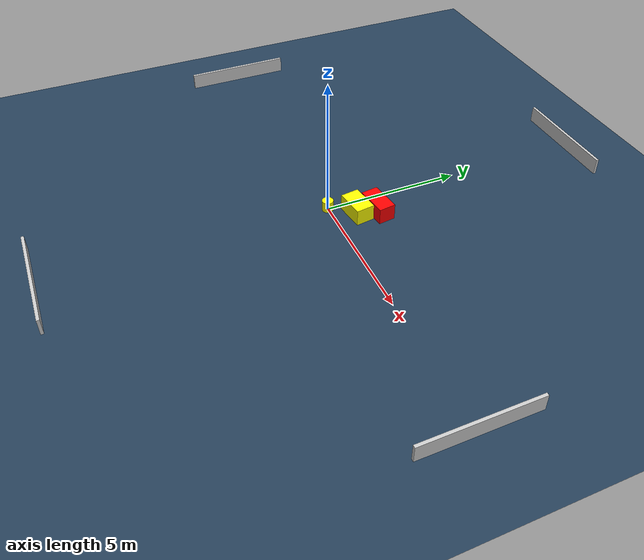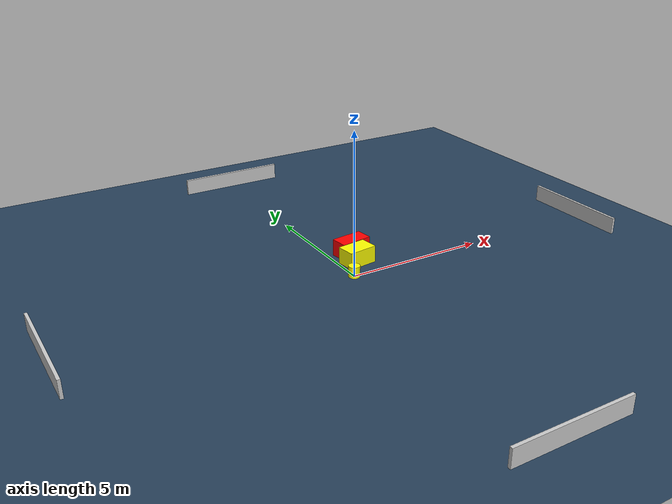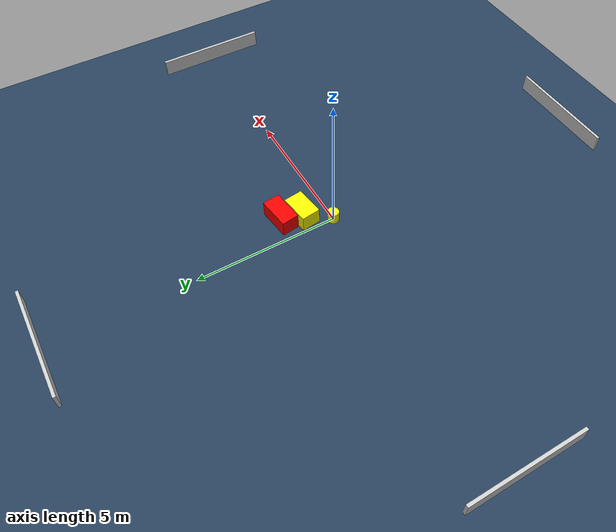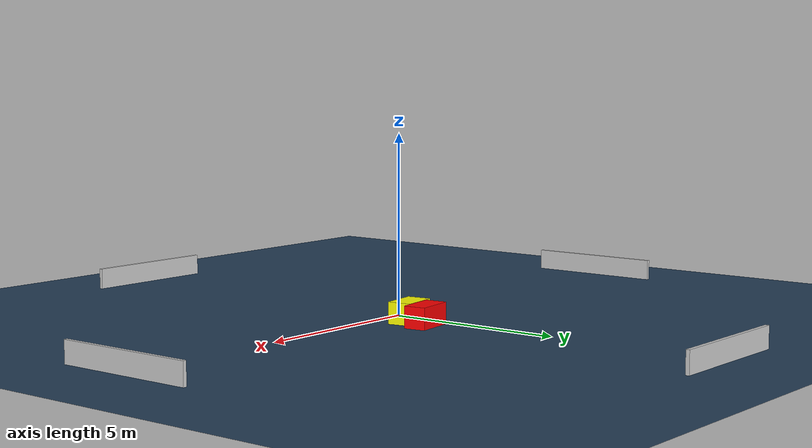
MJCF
<?xml version="1.0" ?>
<mujoco model="generated_environment">
  <option timestep="0.01" integrator="RK4" cone="elliptic"/>
  <default>
    <geom density="1"/>
  </default>
  <asset>
    <texture builtin="gradient" height="3072" name="skybox" rgb1="0.3 0.5 0.7" rgb2="0 0 0" type="skybox" width="512"/>
    <texture builtin="checker" height="300" name="groundplane" rgb1="0.2 0.3 0.4" rgb2="0.1 0.2 0.3" type="2d" width="300"/>
    <material name="groundplane" reflectance="0.2" texrepeat="5 5" texture="groundplane"/>
  </asset>
  <worldbody>
    <light dir="0 0 -1" directional="true" pos="0 0 1.5"/>
    <geom condim="3" friction="0.5 0.005 0.001" material="groundplane" name="floor" pos="0 0 0" size="0 0 0.05" type="plane"/>
    <body name="walls">
      <geom name="wall_1" condim="4" pos="-10.0 0.0 0.3" rgba="0.800000011920929 0.800000011920929 0.800000011920929 1.0" size="0.05 2.0 0.3" type="box"/>
      <geom name="wall_2" condim="4" pos="10.0 0.0 0.3" rgba="0.800000011920929 0.800000011920929 0.800000011920929 1.0" size="0.05 2.0 0.3" type="box"/>
      <geom name="wall_3" condim="4" pos="0.0 -10.0 0.3" rgba="0.800000011920929 0.800000011920929 0.800000011920929 1.0" size="2.0 0.05 0.3" type="box"/>
      <geom name="wall_4" condim="4" pos="0.0 10.0 0.3" rgba="0.800000011920929 0.800000011920929 0.800000011920929 1.0" size="2.0 0.05 0.3" type="box"/>
    </body>
    <body name="robot">
      <joint name="joint_x" type="slide" pos="0 0 0" axis="1 0 0"/>
      <joint name="joint_y" type="slide" pos="0 0 0" axis="0 1 0"/>
      <geom name="robot" type="cylinder" pos="0.0 0.0 0.2" size="0.2 0.2 0.0" mass="5.0" friction="1.0 0.005 0.0001" condim="4" rgba="1.0 1.0 0.0 1.0"/>
    </body>
    <body name="obstacle_1_movable">
      <geom name="obstacle_1_movable" condim="4" pos="0.6343632172135029 0.8495724165483517 0.3" euler="0 0 187.54128563228466" friction="0.0 0.005 0.001" rgba="1.0 1.0 0.0 1.0" size="0.523708066186791 0.3349404512834196 0.3" type="box" mass="0.1"/>
      <joint type="free"/>
    </body>
    <body name="obstacle_2_static">
      <geom name="obstacle_2_static" condim="4" pos="0.8316042466127054 1.5506405830080057 0.3" euler="0 0 277.530827593361" friction="0.0 0.005 0.001" rgba="1.0 0.0 0.0 1.0" size="0.30744891930507195 0.5730789187960394 0.3" type="box"/>
    </body>
  </worldbody>
  <actuator>
    <motor name="actuator_x" joint="joint_x" gear="1" ctrlrange="-1 1"/>
    <motor name="actuator_y" joint="joint_y" gear="1" ctrlrange="-1 1"/>
  </actuator>
</mujoco>
